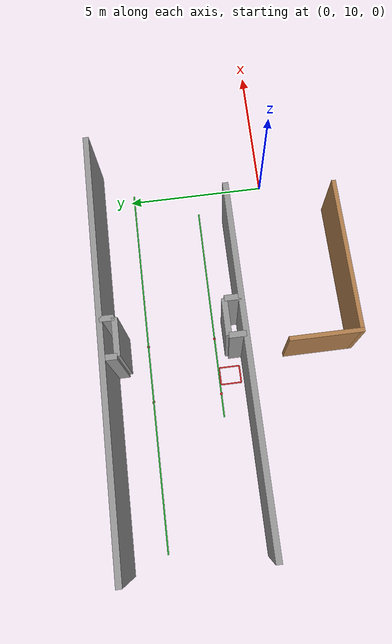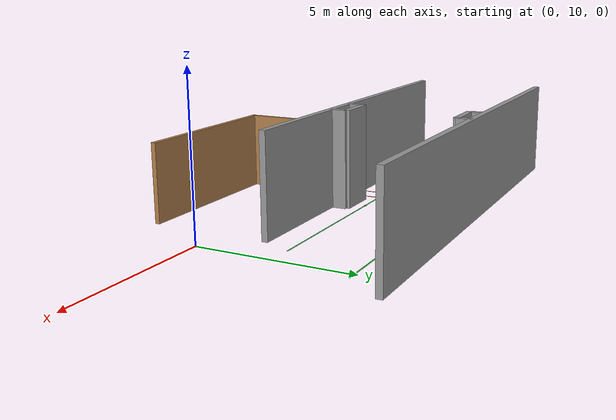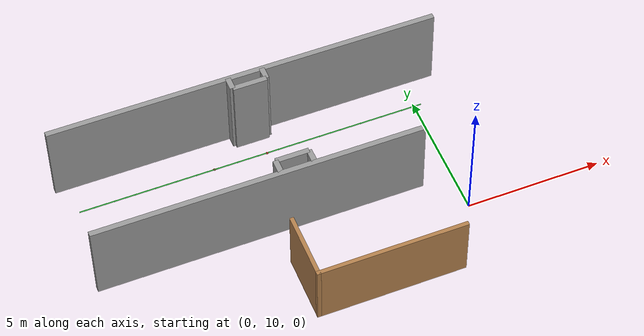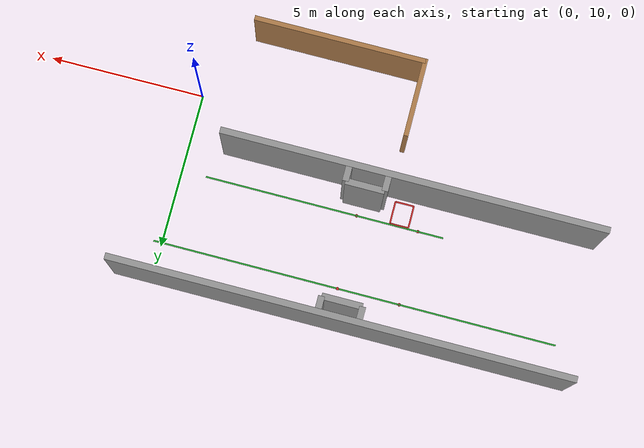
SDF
<sdf version="1.6">
 <world name="square_world">
  <model name="wall3">
   <static>1</static>
   <pose>-7.17 11.525 1.6 0 -0 0</pose>
   <link name="wall_link">
    <inertial><mass>10000</mass></inertial>
    <collision name="wall_collision">
     <geometry><box><size>12.07 0.2 3.2</size></box></geometry>
     <surface><contact><collide_bitmask>2</collide_bitmask></contact></surface>
    </collision>
    <visual name="wall_visual">
     <geometry><box><size>12.07 0.2 3.2</size></box></geometry>
     <material><script><name>Gazebo/Grey</name><uri>__default__</uri></script></material>
    </visual>
   </link>
  </model>
  <model name="wall5">
   <static>1</static>
   <pose>-6.05 16.1 1.6 0 -0 0</pose>
   <link name="wall_link">
    <inertial><mass>10000</mass></inertial>
    <collision name="wall_collision">
     <geometry><box><size>14.46 0.2 3.2</size></box></geometry>
     <surface><contact><collide_bitmask>2</collide_bitmask></contact></surface>
    </collision>
    <visual name="wall_visual">
     <geometry><box><size>14.46 0.2 3.2</size></box></geometry>
     <material><script><name>Gazebo/Grey</name><uri>__default__</uri></script></material>
    </visual>
   </link>
  </model>
  <model name="wall30">
   <static>1</static>
   <pose>-5.37 15.86 1.6 0 0 -1.5708</pose>
   <link name="wall_link">
    <inertial><mass>10000</mass></inertial>
    <collision name="wall_collision">
     <geometry><box><size>0.48 0.2 3.2</size></box></geometry>
     <surface><contact><collide_bitmask>2</collide_bitmask></contact></surface>
    </collision>
    <visual name="wall_visual">
     <geometry><box><size>0.48 0.2 3.2</size></box></geometry>
     <material><script><name>Gazebo/Grey</name><uri>__default__</uri></script></material>
    </visual>
   </link>
  </model>
  <model name="wall31">
   <static>1</static>
   <pose>-6.63 15.86 1.6 0 0 -1.5708</pose>
   <link name="wall_link">
    <inertial><mass>10000</mass></inertial>
    <collision name="wall_collision">
     <geometry><box><size>0.48 0.2 3.2</size></box></geometry>
     <surface><contact><collide_bitmask>2</collide_bitmask></contact></surface>
    </collision>
    <visual name="wall_visual">
     <geometry><box><size>0.48 0.2 3.2</size></box></geometry>
     <material><script><name>Gazebo/Grey</name><uri>__default__</uri></script></material>
    </visual>
   </link>
  </model>
  <model name="wall32">
   <static>1</static>
   <pose>-6 15.62 1.6 0 -0 0</pose>
   <link name="wall_link">
    <inertial><mass>10000</mass></inertial>
    <collision name="wall_collision">
     <geometry><box><size>1.26 0.2 3.2</size></box></geometry>
     <surface><contact><collide_bitmask>2</collide_bitmask></contact></surface>
    </collision>
    <visual name="wall_visual">
     <geometry><box><size>1.26 0.2 3.2</size></box></geometry>
     <material><script><name>Gazebo/Grey</name><uri>__default__</uri></script></material>
    </visual>
   </link>
  </model>
  <model name="wall39">
   <static>1</static>
   <pose>-5.18 11.8025 1.6 0 0 -1.5708</pose>
   <link name="wall_link">
    <inertial><mass>10000</mass></inertial>
    <collision name="wall_collision">
     <geometry><box><size>0.555 0.2 3.2</size></box></geometry>
     <surface><contact><collide_bitmask>2</collide_bitmask></contact></surface>
    </collision>
    <visual name="wall_visual">
     <geometry><box><size>0.555 0.2 3.2</size></box></geometry>
     <material><script><name>Gazebo/Grey</name><uri>__default__</uri></script></material>
    </visual>
   </link>
  </model>
  <model name="wall40">
   <static>1</static>
   <pose>-6.4 11.8025 1.6 0 0 -1.5708</pose>
   <link name="wall_link">
    <inertial><mass>10000</mass></inertial>
    <collision name="wall_collision">
     <geometry><box><size>0.555 0.2 3.2</size></box></geometry>
     <surface><contact><collide_bitmask>2</collide_bitmask></contact></surface>
    </collision>
    <visual name="wall_visual">
     <geometry><box><size>0.555 0.2 3.2</size></box></geometry>
     <material><script><name>Gazebo/Grey</name><uri>__default__</uri></script></material>
    </visual>
   </link>
  </model>
  <model name="wall41">
   <static>1</static>
   <pose>-5.79 12.08 1.6 0 -0 0</pose>
   <link name="wall_link">
    <inertial><mass>10000</mass></inertial>
    <collision name="wall_collision">
     <geometry><box><size>1.22 0.2 3.2</size></box></geometry>
     <surface><contact><collide_bitmask>2</collide_bitmask></contact></surface>
    </collision>
    <visual name="wall_visual">
     <geometry><box><size>1.22 0.2 3.2</size></box></geometry>
     <material><script><name>Gazebo/Grey</name><uri>__default__</uri></script></material>
    </visual>
   </link>
  </model>
  <model name="wall538">
   <static>1</static>
   <pose>-6.24 14.88 0 0 -0 0</pose>
   <link name="wall_link">
    <inertial><mass>10000</mass></inertial>
    <collision name="wall_collision">
     <geometry><box><size>13.04 0.05 0.001</size></box></geometry>
     <surface><contact><collide_bitmask>2</collide_bitmask></contact></surface>
    </collision>
    <visual name="wall_visual">
     <geometry><box><size>13.04 0.05 0.001</size></box></geometry>
     <material><script><name>Gazebo/Green</name><uri>__default__</uri></script></material>
    </visual>
   </link>
  </model>
  <model name="wall5688">
   <static>1</static>
   <pose>-4.66 12.48 0 0 -0 0</pose>
   <link name="wall_link">
    <inertial><mass>10000</mass></inertial>
    <collision name="wall_collision">
     <geometry><box><size>7.76 0.05 0.001</size></box></geometry>
     <surface><contact><collide_bitmask>2</collide_bitmask></contact></surface>
    </collision>
    <visual name="wall_visual">
     <geometry><box><size>7.76 0.05 0.001</size></box></geometry>
     <material><script><name>Gazebo/Green</name><uri>__default__</uri></script></material>
    </visual>
   </link>
  </model>
  <model name="wall808">
   <static>1</static>
   <pose>-6.8 12.085 0 0 0 -1.5708</pose>
   <link name="wall_link">
    <inertial><mass>10000</mass></inertial>
    <collision name="wall_collision">
     <geometry><box><size>0.72 0.05 0.001</size></box></geometry>
     <surface><contact><collide_bitmask>2</collide_bitmask></contact></surface>
    </collision>
    <visual name="wall_visual">
     <geometry><box><size>0.72 0.05 0.001</size></box></geometry>
     <material><script><name>Gazebo/Red</name><uri>__default__</uri></script></material>
    </visual>
   </link>
  </model>
  <model name="wall818">
   <static>1</static>
   <pose>-7.4 12.085 0 0 0 -1.5708</pose>
   <link name="wall_link">
    <inertial><mass>10000</mass></inertial>
    <collision name="wall_collision">
     <geometry><box><size>0.72 0.05 0.001</size></box></geometry>
     <surface><contact><collide_bitmask>2</collide_bitmask></contact></surface>
    </collision>
    <visual name="wall_visual">
     <geometry><box><size>0.72 0.05 0.001</size></box></geometry>
     <material><script><name>Gazebo/Red</name><uri>__default__</uri></script></material>
    </visual>
   </link>
  </model>
  <model name="wall828">
   <static>1</static>
   <pose>-7.1 11.725 0 0 -0 0</pose>
   <link name="wall_link">
    <inertial><mass>10000</mass></inertial>
    <collision name="wall_collision">
     <geometry><box><size>0.6 0.05 0.001</size></box></geometry>
     <surface><contact><collide_bitmask>2</collide_bitmask></contact></surface>
    </collision>
    <visual name="wall_visual">
     <geometry><box><size>0.6 0.05 0.001</size></box></geometry>
     <material><script><name>Gazebo/Red</name><uri>__default__</uri></script></material>
    </visual>
   </link>
  </model>
  <model name="wall838">
   <static>1</static>
   <pose>-7.1 12.445 0 0 -0 0</pose>
   <link name="wall_link">
    <inertial><mass>10000</mass></inertial>
    <collision name="wall_collision">
     <geometry><box><size>0.6 0.05 0.001</size></box></geometry>
     <surface><contact><collide_bitmask>2</collide_bitmask></contact></surface>
    </collision>
    <visual name="wall_visual">
     <geometry><box><size>0.6 0.05 0.001</size></box></geometry>
     <material><script><name>Gazebo/Red</name><uri>__default__</uri></script></material>
    </visual>
   </link>
  </model>
  <model name="wall1188">
   <static>1</static>
   <pose>-5.72 14.88 0 0 -0 0</pose>
   <link name="wall_link">
    <inertial><mass>10000</mass></inertial>
    <collision name="wall_collision">
     <geometry><cylinder><radius>0.05</radius><length>0.001</length></cylinder></geometry>
     <surface><contact><collide_bitmask>2</collide_bitmask></contact></surface>
    </collision>
    <visual name="wall_visual">
     <geometry><cylinder><radius>0.05</radius><length>0.001</length></cylinder></geometry>
     <material><script><name>Gazebo/Red</name><uri>__default__</uri></script></material>
    </visual>
   </link>
  </model>
  <model name="wall1198">
   <static>1</static>
   <pose>-7.72 14.88 0 0 -0 0</pose>
   <link name="wall_link">
    <inertial><mass>10000</mass></inertial>
    <collision name="wall_collision">
     <geometry><cylinder><radius>0.05</radius><length>0.001</length></cylinder></geometry>
     <surface><contact><collide_bitmask>2</collide_bitmask></contact></surface>
    </collision>
    <visual name="wall_visual">
     <geometry><cylinder><radius>0.05</radius><length>0.001</length></cylinder></geometry>
     <material><script><name>Gazebo/Red</name><uri>__default__</uri></script></material>
    </visual>
   </link>
  </model>
  <model name="wall1248">
   <static>1</static>
   <pose>-5.72 12.48 0 0 -0 0</pose>
   <link name="wall_link">
    <inertial><mass>10000</mass></inertial>
    <collision name="wall_collision">
     <geometry><cylinder><radius>0.05</radius><length>0.001</length></cylinder></geometry>
     <surface><contact><collide_bitmask>2</collide_bitmask></contact></surface>
    </collision>
    <visual name="wall_visual">
     <geometry><cylinder><radius>0.05</radius><length>0.001</length></cylinder></geometry>
     <material><script><name>Gazebo/Red</name><uri>__default__</uri></script></material>
    </visual>
   </link>
  </model>
  <model name="wall1258">
   <static>1</static>
   <pose>-7.72 12.48 0 0 -0 0</pose>
   <link name="wall_link">
    <inertial><mass>10000</mass></inertial>
    <collision name="wall_collision">
     <geometry><cylinder><radius>0.05</radius><length>0.001</length></cylinder></geometry>
     <surface><contact><collide_bitmask>2</collide_bitmask></contact></surface>
    </collision>
    <visual name="wall_visual">
     <geometry><cylinder><radius>0.05</radius><length>0.001</length></cylinder></geometry>
     <material><script><name>Gazebo/Red</name><uri>__default__</uri></script></material>
    </visual>
   </link>
  </model>
  <model name="LeftRoom">
   <pose>-3.91994 8.87431 0 0 -0 0</pose>
   <link name="Wall_46">
    <collision name="Wall_46_Collision">
     <geometry><box><size>5.5 0.15 2.5</size></box></geometry>
     <pose>0 0 1.25 0 -0 0</pose>
    </collision>
    <visual name="Wall_46_Visual">
     <pose>0 0 1.25 0 -0 0</pose>
     <geometry><box><size>5.5 0.15 2.5</size></box></geometry>
     <material>
      <script><uri>file://media/materials/scripts/gazebo.material</uri><name>Gazebo/Wood</name></script>
      <ambient>1 1 1 1</ambient>
     </material>
     <meta><layer>0</layer></meta>
    </visual>
    <pose>0 -1.175 0 0 -0 3.14159</pose>
   </link>
   <link name="Wall_48">
    <collision name="Wall_48_Collision">
     <geometry><box><size>2.5 0.15 2.5</size></box></geometry>
     <pose>0 0 1.25 0 -0 0</pose>
    </collision>
    <visual name="Wall_48_Visual">
     <pose>0 0 1.25 0 -0 0</pose>
     <geometry><box><size>2.5 0.15 2.5</size></box></geometry>
     <material>
      <script><uri>file://media/materials/scripts/gazebo.material</uri><name>Gazebo/Wood</name></script>
      <ambient>1 1 1 1</ambient>
     </material>
     <meta><layer>0</layer></meta>
    </visual>
    <pose>-2.675 0 0 0 -0 1.5708</pose>
   </link>
   <static>1</static>
  </model>
 </world>
</sdf>
